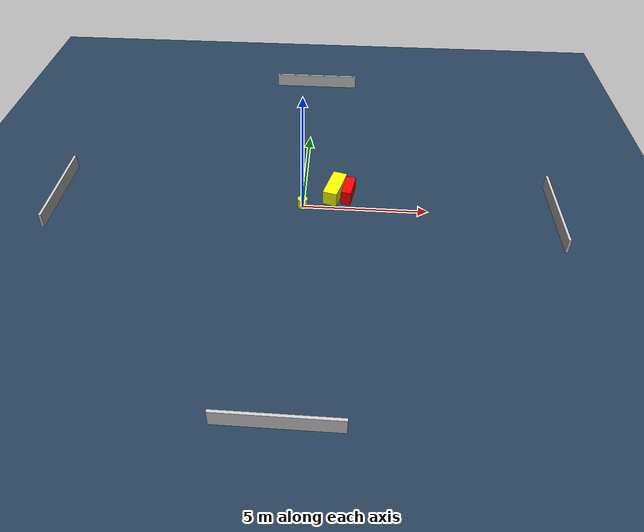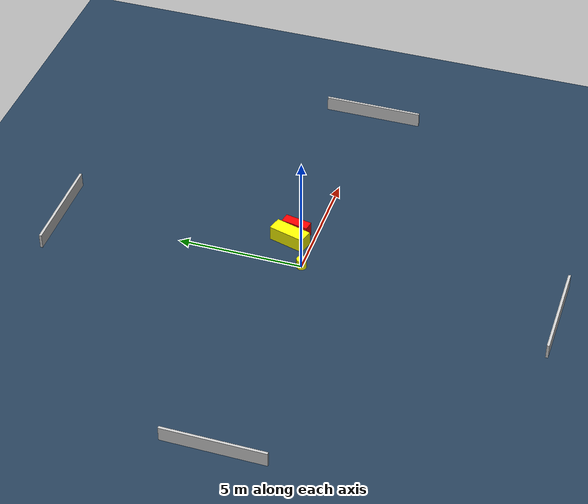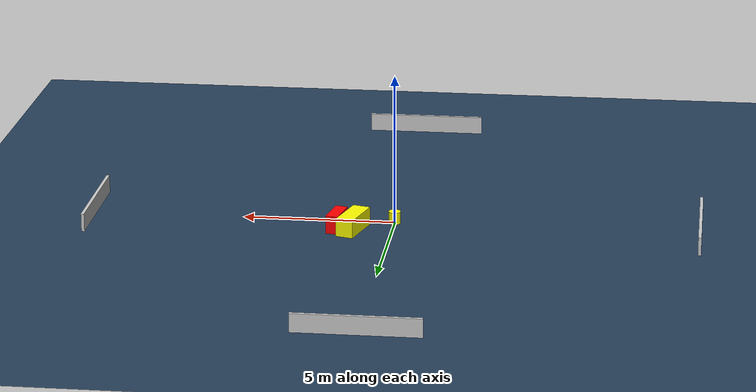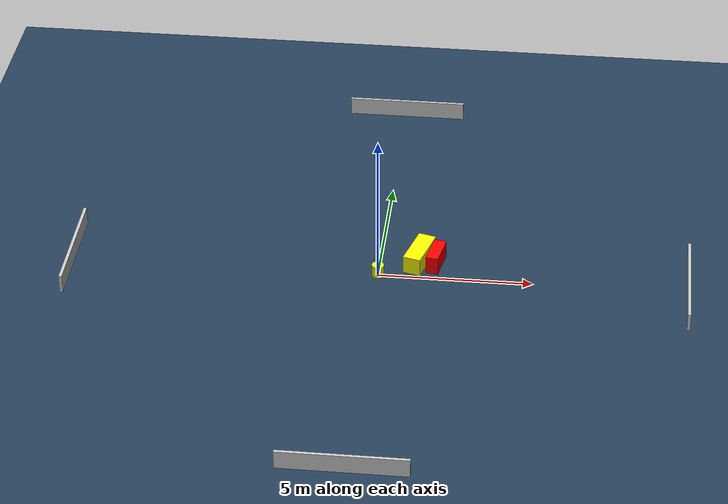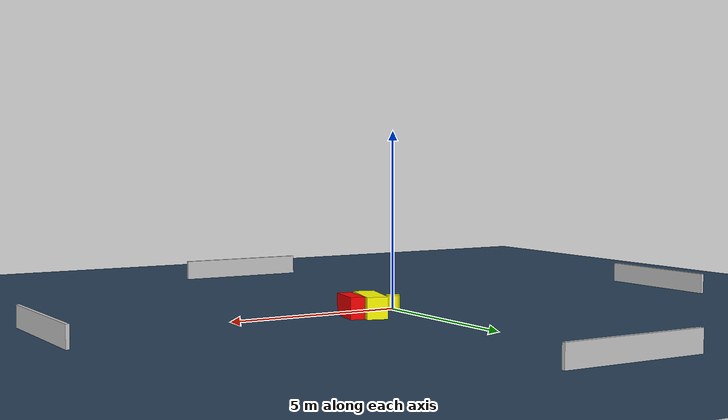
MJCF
<?xml version="1.0" ?>
<mujoco model="generated_environment">
  <option timestep="0.01" integrator="RK4" cone="elliptic"/>
  <default>
    <geom density="1"/>
  </default>
  <asset>
    <texture builtin="gradient" height="3072" name="skybox" rgb1="0.3 0.5 0.7" rgb2="0 0 0" type="skybox" width="512"/>
    <texture builtin="checker" height="300" name="groundplane" rgb1="0.2 0.3 0.4" rgb2="0.1 0.2 0.3" type="2d" width="300"/>
    <material name="groundplane" reflectance="0.2" texrepeat="5 5" texture="groundplane"/>
  </asset>
  <worldbody>
    <light dir="0 0 -1" directional="true" pos="0 0 1.5"/>
    <geom condim="3" friction="0.5 0.005 0.001" material="groundplane" name="floor" pos="0 0 0" size="0 0 0.05" type="plane"/>
    <body name="walls">
      <geom name="wall_1" condim="4" pos="-10.0 0.0 0.3" rgba="0.800000011920929 0.800000011920929 0.800000011920929 1.0" size="0.05 2.0 0.3" type="box"/>
      <geom name="wall_2" condim="4" pos="10.0 0.0 0.3" rgba="0.800000011920929 0.800000011920929 0.800000011920929 1.0" size="0.05 2.0 0.3" type="box"/>
      <geom name="wall_3" condim="4" pos="0.0 -10.0 0.3" rgba="0.800000011920929 0.800000011920929 0.800000011920929 1.0" size="2.0 0.05 0.3" type="box"/>
      <geom name="wall_4" condim="4" pos="0.0 10.0 0.3" rgba="0.800000011920929 0.800000011920929 0.800000011920929 1.0" size="2.0 0.05 0.3" type="box"/>
    </body>
    <body name="robot">
      <joint name="joint_x" type="slide" pos="0 0 0" axis="1 0 0"/>
      <joint name="joint_y" type="slide" pos="0 0 0" axis="0 1 0"/>
      <geom name="robot" type="cylinder" pos="0.0 0.0 0.2" size="0.2 0.2 0.0" mass="5.0" friction="1.0 0.005 0.0001" condim="4" rgba="1.0 1.0 0.0 1.0"/>
    </body>
    <body name="obstacle_1_movable">
      <geom name="obstacle_1_movable" condim="4" pos="1.269409412324263 0.8812376107752664 0.3" euler="0 0 164.39413471909958" friction="0.0 0.005 0.001" rgba="1.0 1.0 0.0 1.0" size="0.2921089985067159 0.7406207884892506 0.3" type="box" mass="0.1"/>
      <joint type="free"/>
    </body>
    <body name="obstacle_2_static">
      <geom name="obstacle_2_static" condim="4" pos="1.8183701630011 0.7880288461640306 0.3" euler="0 0 169.64207947719476" friction="0.0 0.005 0.001" rgba="1.0 0.0 0.0 1.0" size="0.20270288972085232 0.544391872641205 0.3" type="box"/>
    </body>
  </worldbody>
  <actuator>
    <motor name="actuator_x" joint="joint_x" gear="1" ctrlrange="-1 1"/>
    <motor name="actuator_y" joint="joint_y" gear="1" ctrlrange="-1 1"/>
  </actuator>
</mujoco>
